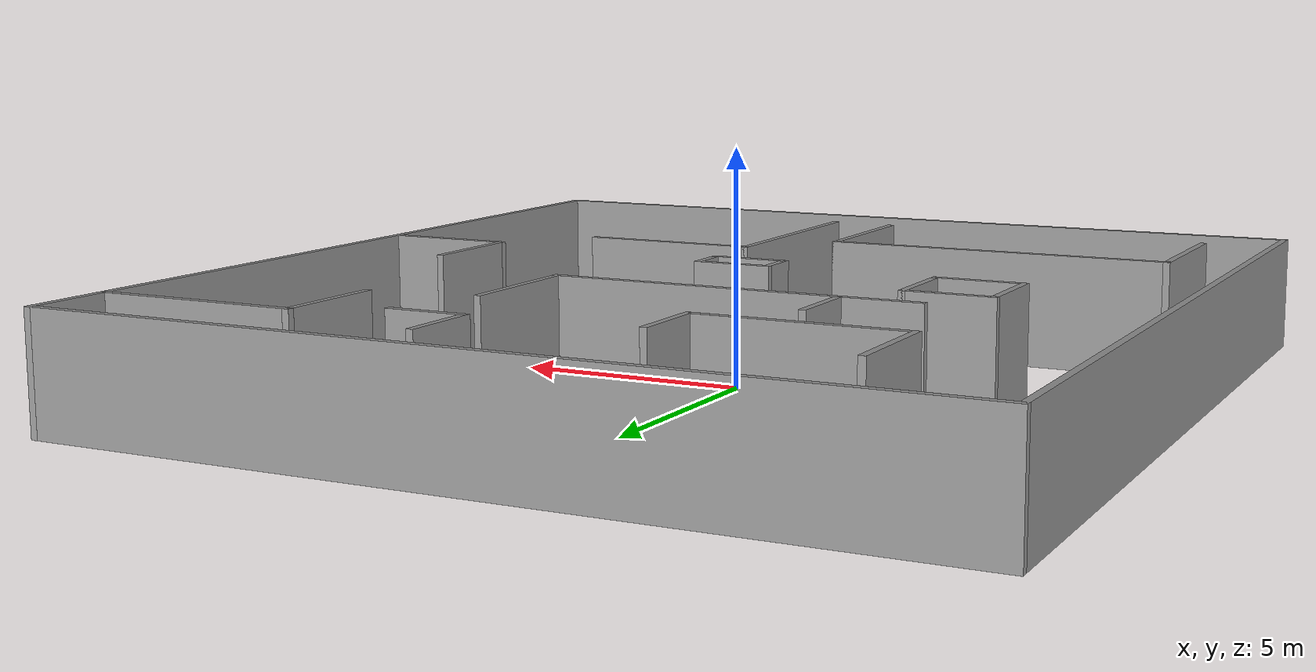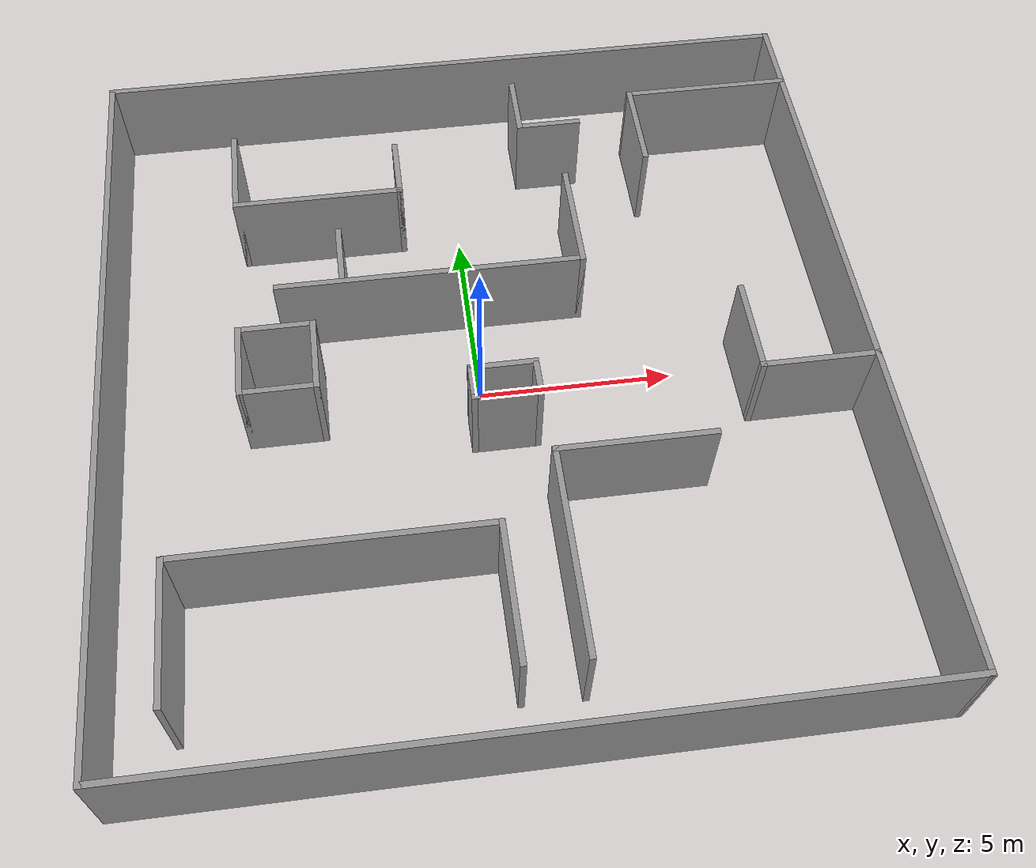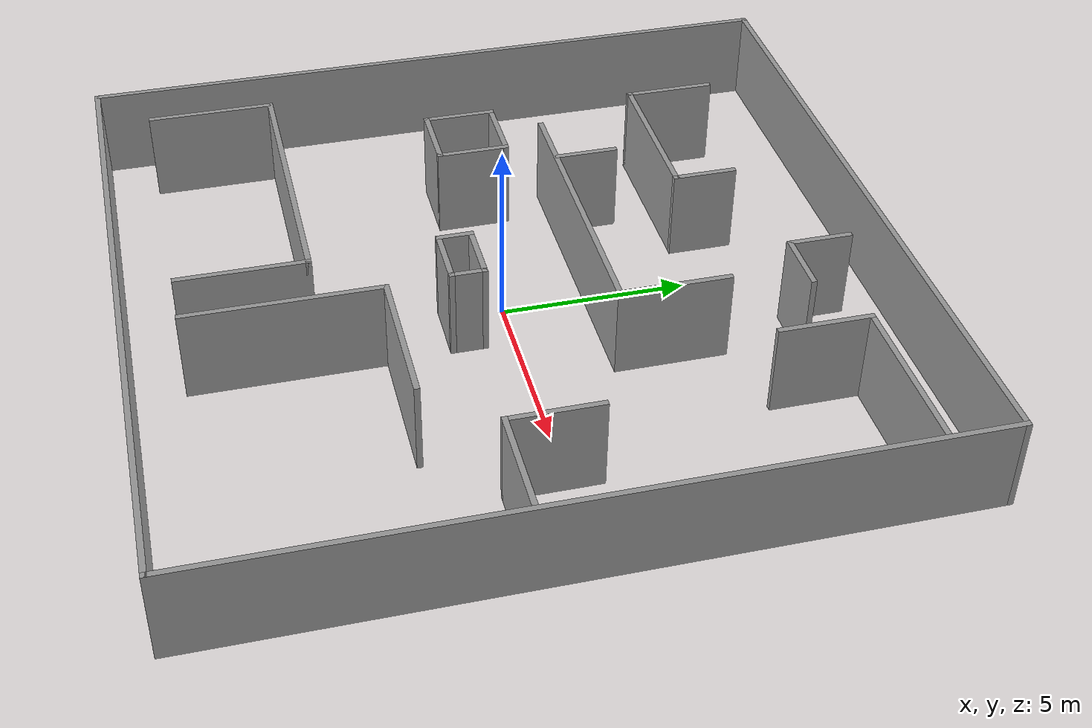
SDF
<?xml version='1.0'?>
<sdf version='1.7'>
  <model name='ma_wei'>
    <pose>0.16642 0.025327 0 0 -0 0</pose>
    <link name='Wall_10'>
      <collision name='Wall_10_Collision'>
        <geometry>
          <box>
            <size>19 0.15 2.5</size>
          </box>
        </geometry>
        <pose>0 0 1.25 0 -0 0</pose>
      </collision>
      <visual name='Wall_10_Visual'>
        <pose>0 0 1.25 0 -0 0</pose>
        <geometry>
          <box>
            <size>19 0.15 2.5</size>
          </box>
        </geometry>
        <material>
          <script>
            <uri>file://media/materials/scripts/gazebo.material</uri>
            <name>Gazebo/Grey</name>
          </script>
          <ambient>1 1 1 1</ambient>
        </material>
        <meta>
          <layer>0</layer>
        </meta>
      </visual>
      <pose>0 -9.8 0 0 -0 0</pose>
    </link>
    <link name='Wall_11'>
      <collision name='Wall_11_Collision'>
        <geometry>
          <box>
            <size>19.75 0.15 2.5</size>
          </box>
        </geometry>
        <pose>0 0 1.25 0 -0 0</pose>
      </collision>
      <visual name='Wall_11_Visual'>
        <pose>0 0 1.25 0 -0 0</pose>
        <geometry>
          <box>
            <size>19.75 0.15 2.5</size>
          </box>
        </geometry>
        <material>
          <script>
            <uri>file://media/materials/scripts/gazebo.material</uri>
            <name>Gazebo/Grey</name>
          </script>
          <ambient>1 1 1 1</ambient>
        </material>
        <meta>
          <layer>0</layer>
        </meta>
      </visual>
      <pose>9.425 -0 0 0 -0 1.5708</pose>
    </link>
    <link name='Wall_12'>
      <collision name='Wall_12_Collision'>
        <geometry>
          <box>
            <size>19 0.15 2.5</size>
          </box>
        </geometry>
        <pose>0 0 1.25 0 -0 0</pose>
      </collision>
      <visual name='Wall_12_Visual'>
        <pose>0 0 1.25 0 -0 0</pose>
        <geometry>
          <box>
            <size>19 0.15 2.5</size>
          </box>
        </geometry>
        <material>
          <script>
            <uri>file://media/materials/scripts/gazebo.material</uri>
            <name>Gazebo/Grey</name>
          </script>
          <ambient>1 1 1 1</ambient>
        </material>
        <meta>
          <layer>0</layer>
        </meta>
      </visual>
      <pose>0 9.8 0 0 -0 3.14159</pose>
    </link>
    <link name='Wall_13'>
      <collision name='Wall_13_Collision'>
        <geometry>
          <box>
            <size>19.75 0.15 2.5</size>
          </box>
        </geometry>
        <pose>0 0 1.25 0 -0 0</pose>
      </collision>
      <visual name='Wall_13_Visual'>
        <pose>0 0 1.25 0 -0 0</pose>
        <geometry>
          <box>
            <size>19.75 0.15 2.5</size>
          </box>
        </geometry>
        <material>
          <script>
            <uri>file://media/materials/scripts/gazebo.material</uri>
            <name>Gazebo/Grey</name>
          </script>
          <ambient>1 1 1 1</ambient>
        </material>
        <meta>
          <layer>0</layer>
        </meta>
      </visual>
      <pose>-9.425 -0 0 0 -0 -1.5708</pose>
    </link>
    <link name='Wall_17'>
      <collision name='Wall_17_Collision'>
        <geometry>
          <box>
            <size>3.5 0.15 2.5</size>
          </box>
        </geometry>
        <pose>0 0 1.25 0 -0 0</pose>
      </collision>
      <visual name='Wall_17_Visual'>
        <pose>0 0 1.25 0 -0 0</pose>
        <geometry>
          <box>
            <size>3.5 0.15 2.5</size>
          </box>
        </geometry>
        <material>
          <script>
            <uri>file://media/materials/scripts/gazebo.material</uri>
            <name>Gazebo/Grey</name>
          </script>
          <ambient>1 1 1 1</ambient>
        </material>
        <meta>
          <layer>0</layer>
        </meta>
      </visual>
      <pose>-7.87792 -6.69527 0 0 -0 1.5708</pose>
    </link>
    <link name='Wall_18'>
      <collision name='Wall_18_Collision'>
        <geometry>
          <box>
            <size>7.75 0.15 2.5</size>
          </box>
        </geometry>
        <pose>0 0 1.25 0 -0 0</pose>
      </collision>
      <visual name='Wall_18_Visual'>
        <pose>0 0 1.25 0 -0 0</pose>
        <geometry>
          <box>
            <size>7.75 0.15 2.5</size>
          </box>
        </geometry>
        <material>
          <script>
            <uri>file://media/materials/scripts/gazebo.material</uri>
            <name>Gazebo/Grey</name>
          </script>
          <ambient>1 1 1 1</ambient>
        </material>
        <meta>
          <layer>0</layer>
        </meta>
      </visual>
      <pose>-4.07792 -5.02027 0 0 -0 0</pose>
    </link>
    <link name='Wall_19'>
      <collision name='Wall_19_Collision'>
        <geometry>
          <box>
            <size>3.5 0.15 2.5</size>
          </box>
        </geometry>
        <pose>0 0 1.25 0 -0 0</pose>
      </collision>
      <visual name='Wall_19_Visual'>
        <pose>0 0 1.25 0 -0 0</pose>
        <geometry>
          <box>
            <size>3.5 0.15 2.5</size>
          </box>
        </geometry>
        <material>
          <script>
            <uri>file://media/materials/scripts/gazebo.material</uri>
            <name>Gazebo/Grey</name>
          </script>
          <ambient>1 1 1 1</ambient>
        </material>
        <meta>
          <layer>0</layer>
        </meta>
      </visual>
      <pose>-0.277924 -6.69527 0 0 -0 -1.5708</pose>
    </link>
    <link name='Wall_23'>
      <collision name='Wall_23_Collision'>
        <geometry>
          <box>
            <size>5.25 0.15 2.5</size>
          </box>
        </geometry>
        <pose>0 0 1.25 0 -0 0</pose>
      </collision>
      <visual name='Wall_23_Visual'>
        <pose>0 0 1.25 0 -0 0</pose>
        <geometry>
          <box>
            <size>5.25 0.15 2.5</size>
          </box>
        </geometry>
        <material>
          <script>
            <uri>file://media/materials/scripts/gazebo.material</uri>
            <name>Gazebo/Grey</name>
          </script>
          <ambient>1 1 1 1</ambient>
        </material>
        <meta>
          <layer>0</layer>
        </meta>
      </visual>
      <pose>1.19443 -5.84672 0 0 -0 1.5708</pose>
    </link>
    <link name='Wall_24'>
      <collision name='Wall_24_Collision'>
        <geometry>
          <box>
            <size>4 0.15 2.5</size>
          </box>
        </geometry>
        <pose>0 0 1.25 0 -0 0</pose>
      </collision>
      <visual name='Wall_24_Visual'>
        <pose>0 0 1.25 0 -0 0</pose>
        <geometry>
          <box>
            <size>4 0.15 2.5</size>
          </box>
        </geometry>
        <material>
          <script>
            <uri>file://media/materials/scripts/gazebo.material</uri>
            <name>Gazebo/Grey</name>
          </script>
          <ambient>1 1 1 1</ambient>
        </material>
        <meta>
          <layer>0</layer>
        </meta>
      </visual>
      <pose>3.11943 -3.29672 0 0 -0 0</pose>
    </link>
    <link name='Wall_26'>
      <collision name='Wall_26_Collision'>
        <geometry>
          <box>
            <size>3 0.15 2.5</size>
          </box>
        </geometry>
        <pose>0 0 1.25 0 -0 0</pose>
      </collision>
      <visual name='Wall_26_Visual'>
        <pose>0 0 1.25 0 -0 0</pose>
        <geometry>
          <box>
            <size>3 0.15 2.5</size>
          </box>
        </geometry>
        <material>
          <script>
            <uri>file://media/materials/scripts/gazebo.material</uri>
            <name>Gazebo/Grey</name>
          </script>
          <ambient>1 1 1 1</ambient>
        </material>
        <meta>
          <layer>0</layer>
        </meta>
      </visual>
      <pose>7.99274 -1.57036 0 0 -0 3.14159</pose>
    </link>
    <link name='Wall_27'>
      <collision name='Wall_27_Collision'>
        <geometry>
          <box>
            <size>2.5 0.15 2.5</size>
          </box>
        </geometry>
        <pose>0 0 1.25 0 -0 0</pose>
      </collision>
      <visual name='Wall_27_Visual'>
        <pose>0 0 1.25 0 -0 0</pose>
        <geometry>
          <box>
            <size>2.5 0.15 2.5</size>
          </box>
        </geometry>
        <material>
          <script>
            <uri>file://media/materials/scripts/gazebo.material</uri>
            <name>Gazebo/Grey</name>
          </script>
          <ambient>1 1 1 1</ambient>
        </material>
        <meta>
          <layer>0</layer>
        </meta>
      </visual>
      <pose>6.56774 -0.395364 0 0 -0 1.5708</pose>
    </link>
    <link name='Wall_29'>
      <collision name='Wall_29_Collision'>
        <geometry>
          <box>
            <size>2 0.15 2.5</size>
          </box>
        </geometry>
        <pose>0 0 1.25 0 -0 0</pose>
      </collision>
      <visual name='Wall_29_Visual'>
        <pose>0 0 1.25 0 -0 0</pose>
        <geometry>
          <box>
            <size>2 0.15 2.5</size>
          </box>
        </geometry>
        <material>
          <script>
            <uri>file://media/materials/scripts/gazebo.material</uri>
            <name>Gazebo/Grey</name>
          </script>
          <ambient>1 1 1 1</ambient>
        </material>
        <meta>
          <layer>0</layer>
        </meta>
      </visual>
      <pose>-5.14471 -0.826162 0 0 -0 0</pose>
    </link>
    <link name='Wall_30'>
      <collision name='Wall_30_Collision'>
        <geometry>
          <box>
            <size>2 0.15 2.5</size>
          </box>
        </geometry>
        <pose>0 0 1.25 0 -0 0</pose>
      </collision>
      <visual name='Wall_30_Visual'>
        <pose>0 0 1.25 0 -0 0</pose>
        <geometry>
          <box>
            <size>2 0.15 2.5</size>
          </box>
        </geometry>
        <material>
          <script>
            <uri>file://media/materials/scripts/gazebo.material</uri>
            <name>Gazebo/Grey</name>
          </script>
          <ambient>1 1 1 1</ambient>
        </material>
        <meta>
          <layer>0</layer>
        </meta>
      </visual>
      <pose>-4.21971 0.098838 0 0 -0 1.5708</pose>
    </link>
    <link name='Wall_31'>
      <collision name='Wall_31_Collision'>
        <geometry>
          <box>
            <size>2 0.15 2.5</size>
          </box>
        </geometry>
        <pose>0 0 1.25 0 -0 0</pose>
      </collision>
      <visual name='Wall_31_Visual'>
        <pose>0 0 1.25 0 -0 0</pose>
        <geometry>
          <box>
            <size>2 0.15 2.5</size>
          </box>
        </geometry>
        <material>
          <script>
            <uri>file://media/materials/scripts/gazebo.material</uri>
            <name>Gazebo/Grey</name>
          </script>
          <ambient>1 1 1 1</ambient>
        </material>
        <meta>
          <layer>0</layer>
        </meta>
      </visual>
      <pose>-5.14471 1.02384 0 0 -0 3.14159</pose>
    </link>
    <link name='Wall_32'>
      <collision name='Wall_32_Collision'>
        <geometry>
          <box>
            <size>2 0.15 2.5</size>
          </box>
        </geometry>
        <pose>0 0 1.25 0 -0 0</pose>
      </collision>
      <visual name='Wall_32_Visual'>
        <pose>0 0 1.25 0 -0 0</pose>
        <geometry>
          <box>
            <size>2 0.15 2.5</size>
          </box>
        </geometry>
        <material>
          <script>
            <uri>file://media/materials/scripts/gazebo.material</uri>
            <name>Gazebo/Grey</name>
          </script>
          <ambient>1 1 1 1</ambient>
        </material>
        <meta>
          <layer>0</layer>
        </meta>
      </visual>
      <pose>-6.06971 0.098838 0 0 -0 -1.5708</pose>
    </link>
    <link name='Wall_34'>
      <collision name='Wall_34_Collision'>
        <geometry>
          <box>
            <size>8 0.15 2.5</size>
          </box>
        </geometry>
        <pose>0 0 1.25 0 -0 0</pose>
      </collision>
      <visual name='Wall_34_Visual'>
        <pose>0 0 1.25 0 -0 0</pose>
        <geometry>
          <box>
            <size>8 0.15 2.5</size>
          </box>
        </geometry>
        <material>
          <script>
            <uri>file://media/materials/scripts/gazebo.material</uri>
            <name>Gazebo/Grey</name>
          </script>
          <ambient>1 1 1 1</ambient>
        </material>
        <meta>
          <layer>0</layer>
        </meta>
      </visual>
      <pose>-1.15914 2.25121 0 0 -0 0</pose>
    </link>
    <link name='Wall_35'>
      <collision name='Wall_35_Collision'>
        <geometry>
          <box>
            <size>3 0.15 2.5</size>
          </box>
        </geometry>
        <pose>0 0 1.25 0 -0 0</pose>
      </collision>
      <visual name='Wall_35_Visual'>
        <pose>0 0 1.25 0 -0 0</pose>
        <geometry>
          <box>
            <size>3 0.15 2.5</size>
          </box>
        </geometry>
        <material>
          <script>
            <uri>file://media/materials/scripts/gazebo.material</uri>
            <name>Gazebo/Grey</name>
          </script>
          <ambient>1 1 1 1</ambient>
        </material>
        <meta>
          <layer>0</layer>
        </meta>
      </visual>
      <pose>2.76586 3.67621 0 0 -0 1.5708</pose>
    </link>
    <link name='Wall_37'>
      <collision name='Wall_37_Collision'>
        <geometry>
          <box>
            <size>1.75 0.15 2.5</size>
          </box>
        </geometry>
        <pose>0 0 1.25 0 -0 0</pose>
      </collision>
      <visual name='Wall_37_Visual'>
        <pose>0 0 1.25 0 -0 0</pose>
        <geometry>
          <box>
            <size>1.75 0.15 2.5</size>
          </box>
        </geometry>
        <material>
          <script>
            <uri>file://media/materials/scripts/gazebo.material</uri>
            <name>Gazebo/Grey</name>
          </script>
          <ambient>1 1 1 1</ambient>
        </material>
        <meta>
          <layer>0</layer>
        </meta>
      </visual>
      <pose>-3.41472 3.09144 0 0 -0 1.5708</pose>
    </link>
    <link name='Wall_39'>
      <collision name='Wall_39_Collision'>
        <geometry>
          <box>
            <size>2.5 0.15 2.5</size>
          </box>
        </geometry>
        <pose>0 0 1.25 0 -0 0</pose>
      </collision>
      <visual name='Wall_39_Visual'>
        <pose>0 0 1.25 0 -0 0</pose>
        <geometry>
          <box>
            <size>2.5 0.15 2.5</size>
          </box>
        </geometry>
        <material>
          <script>
            <uri>file://media/materials/scripts/gazebo.material</uri>
            <name>Gazebo/Grey</name>
          </script>
          <ambient>1 1 1 1</ambient>
        </material>
        <meta>
          <layer>0</layer>
        </meta>
      </visual>
      <pose>-6.04959 6.30574 0 0 -0 -1.5708</pose>
    </link>
    <link name='Wall_40'>
      <collision name='Wall_40_Collision'>
        <geometry>
          <box>
            <size>4.5 0.15 2.5</size>
          </box>
        </geometry>
        <pose>0 0 1.25 0 -0 0</pose>
      </collision>
      <visual name='Wall_40_Visual'>
        <pose>0 0 1.25 0 -0 0</pose>
        <geometry>
          <box>
            <size>4.5 0.15 2.5</size>
          </box>
        </geometry>
        <material>
          <script>
            <uri>file://media/materials/scripts/gazebo.material</uri>
            <name>Gazebo/Grey</name>
          </script>
          <ambient>1 1 1 1</ambient>
        </material>
        <meta>
          <layer>0</layer>
        </meta>
      </visual>
      <pose>-3.87459 5.13074 0 0 -0 0</pose>
    </link>
    <link name='Wall_41'>
      <collision name='Wall_41_Collision'>
        <geometry>
          <box>
            <size>1.75 0.15 2.5</size>
          </box>
        </geometry>
        <pose>0 0 1.25 0 -0 0</pose>
      </collision>
      <visual name='Wall_41_Visual'>
        <pose>0 0 1.25 0 -0 0</pose>
        <geometry>
          <box>
            <size>1.75 0.15 2.5</size>
          </box>
        </geometry>
        <material>
          <script>
            <uri>file://media/materials/scripts/gazebo.material</uri>
            <name>Gazebo/Grey</name>
          </script>
          <ambient>1 1 1 1</ambient>
        </material>
        <meta>
          <layer>0</layer>
        </meta>
      </visual>
      <pose>-1.69959 5.93074 0 0 -0 1.5708</pose>
    </link>
    <link name='Wall_43'>
      <collision name='Wall_43_Collision'>
        <geometry>
          <box>
            <size>1 0.15 2.5</size>
          </box>
        </geometry>
        <pose>0 0 1.25 0 -0 0</pose>
      </collision>
      <visual name='Wall_43_Visual'>
        <pose>0 0 1.25 0 -0 0</pose>
        <geometry>
          <box>
            <size>1 0.15 2.5</size>
          </box>
        </geometry>
        <material>
          <script>
            <uri>file://media/materials/scripts/gazebo.material</uri>
            <name>Gazebo/Grey</name>
          </script>
          <ambient>1 1 1 1</ambient>
        </material>
        <meta>
          <layer>0</layer>
        </meta>
      </visual>
      <pose>-0.498247 -1.21094 0 0 -0 -1.5708</pose>
    </link>
    <link name='Wall_44'>
      <collision name='Wall_44_Collision'>
        <geometry>
          <box>
            <size>1.75 0.15 2.5</size>
          </box>
        </geometry>
        <pose>0 0 1.25 0 -0 0</pose>
      </collision>
      <visual name='Wall_44_Visual'>
        <pose>0 0 1.25 0 -0 0</pose>
        <geometry>
          <box>
            <size>1.75 0.15 2.5</size>
          </box>
        </geometry>
        <material>
          <script>
            <uri>file://media/materials/scripts/gazebo.material</uri>
            <name>Gazebo/Grey</name>
          </script>
          <ambient>1 1 1 1</ambient>
        </material>
        <meta>
          <layer>0</layer>
        </meta>
      </visual>
      <pose>0.301753 -1.63593 0 0 -0 0</pose>
    </link>
    <link name='Wall_45'>
      <collision name='Wall_45_Collision'>
        <geometry>
          <box>
            <size>1 0.15 2.5</size>
          </box>
        </geometry>
        <pose>0 0 1.25 0 -0 0</pose>
      </collision>
      <visual name='Wall_45_Visual'>
        <pose>0 0 1.25 0 -0 0</pose>
        <geometry>
          <box>
            <size>1 0.15 2.5</size>
          </box>
        </geometry>
        <material>
          <script>
            <uri>file://media/materials/scripts/gazebo.material</uri>
            <name>Gazebo/Grey</name>
          </script>
          <ambient>1 1 1 1</ambient>
        </material>
        <meta>
          <layer>0</layer>
        </meta>
      </visual>
      <pose>1.10175 -1.21094 0 0 -0 1.5708</pose>
    </link>
    <link name='Wall_46'>
      <collision name='Wall_46_Collision'>
        <geometry>
          <box>
            <size>1.75 0.15 2.5</size>
          </box>
        </geometry>
        <pose>0 0 1.25 0 -0 0</pose>
      </collision>
      <visual name='Wall_46_Visual'>
        <pose>0 0 1.25 0 -0 0</pose>
        <geometry>
          <box>
            <size>1.75 0.15 2.5</size>
          </box>
        </geometry>
        <material>
          <script>
            <uri>file://media/materials/scripts/gazebo.material</uri>
            <name>Gazebo/Grey</name>
          </script>
          <ambient>1 1 1 1</ambient>
        </material>
        <meta>
          <layer>0</layer>
        </meta>
      </visual>
      <pose>0.301753 -0.785935 0 0 -0 3.14159</pose>
    </link>
    <link name='Wall_48'>
      <collision name='Wall_48_Collision'>
        <geometry>
          <box>
            <size>2.5 0.15 2.5</size>
          </box>
        </geometry>
        <pose>0 0 1.25 0 -0 0</pose>
      </collision>
      <visual name='Wall_48_Visual'>
        <pose>0 0 1.25 0 -0 0</pose>
        <geometry>
          <box>
            <size>2.5 0.15 2.5</size>
          </box>
        </geometry>
        <material>
          <script>
            <uri>file://media/materials/scripts/gazebo.material</uri>
            <name>Gazebo/Grey</name>
          </script>
          <ambient>1 1 1 1</ambient>
        </material>
        <meta>
          <layer>0</layer>
        </meta>
      </visual>
      <pose>5.03958 6.74389 0 0 -0 1.5708</pose>
    </link>
    <link name='Wall_49'>
      <collision name='Wall_49_Collision'>
        <geometry>
          <box>
            <size>4.5 0.15 2.5</size>
          </box>
        </geometry>
        <pose>0 0 1.25 0 -0 0</pose>
      </collision>
      <visual name='Wall_49_Visual'>
        <pose>0 0 1.25 0 -0 0</pose>
        <geometry>
          <box>
            <size>4.5 0.15 2.5</size>
          </box>
        </geometry>
        <material>
          <script>
            <uri>file://media/materials/scripts/gazebo.material</uri>
            <name>Gazebo/Grey</name>
          </script>
          <ambient>1 1 1 1</ambient>
        </material>
        <meta>
          <layer>0</layer>
        </meta>
      </visual>
      <pose>7.21457 7.91889 0 0 -0 0</pose>
    </link>
    <link name='Wall_51'>
      <collision name='Wall_51_Collision'>
        <geometry>
          <box>
            <size>1.75 0.15 2.5</size>
          </box>
        </geometry>
        <pose>0 0 1.25 0 -0 0</pose>
      </collision>
      <visual name='Wall_51_Visual'>
        <pose>0 0 1.25 0 -0 0</pose>
        <geometry>
          <box>
            <size>1.75 0.15 2.5</size>
          </box>
        </geometry>
        <material>
          <script>
            <uri>file://media/materials/scripts/gazebo.material</uri>
            <name>Gazebo/Grey</name>
          </script>
          <ambient>1 1 1 1</ambient>
        </material>
        <meta>
          <layer>0</layer>
        </meta>
      </visual>
      <pose>1.79435 7.85452 0 0 -0 -1.5708</pose>
    </link>
    <link name='Wall_52'>
      <collision name='Wall_52_Collision'>
        <geometry>
          <box>
            <size>1.75 0.15 2.5</size>
          </box>
        </geometry>
        <pose>0 0 1.25 0 -0 0</pose>
      </collision>
      <visual name='Wall_52_Visual'>
        <pose>0 0 1.25 0 -0 0</pose>
        <geometry>
          <box>
            <size>1.75 0.15 2.5</size>
          </box>
        </geometry>
        <material>
          <script>
            <uri>file://media/materials/scripts/gazebo.material</uri>
            <name>Gazebo/Grey</name>
          </script>
          <ambient>1 1 1 1</ambient>
        </material>
        <meta>
          <layer>0</layer>
        </meta>
      </visual>
      <pose>2.59435 7.05451 0 0 -0 0</pose>
    </link>
    <static>1</static>
  </model>
</sdf>
